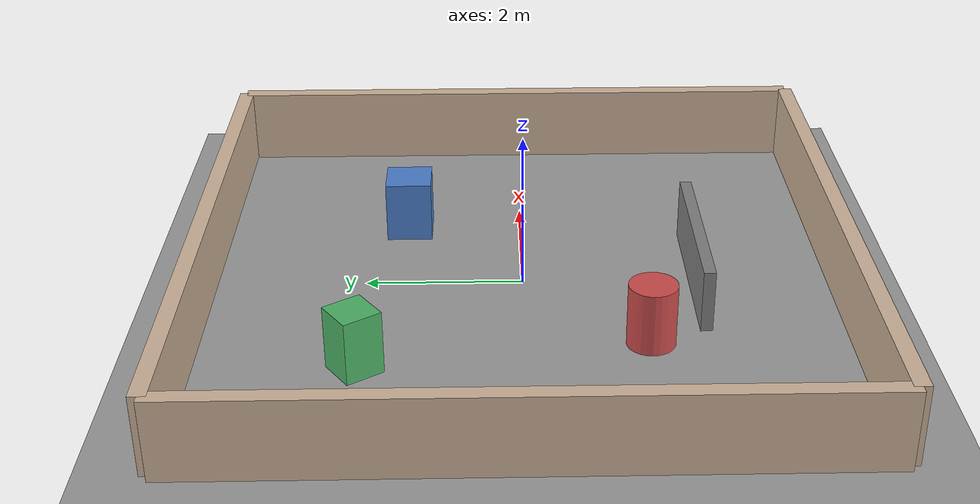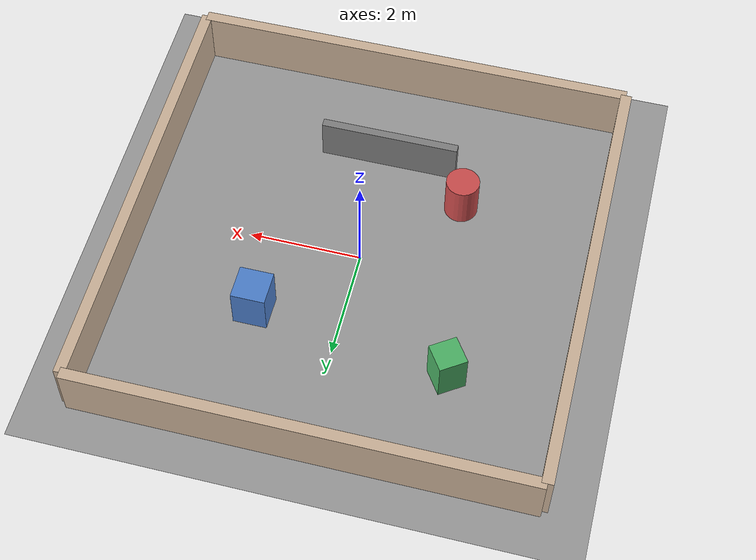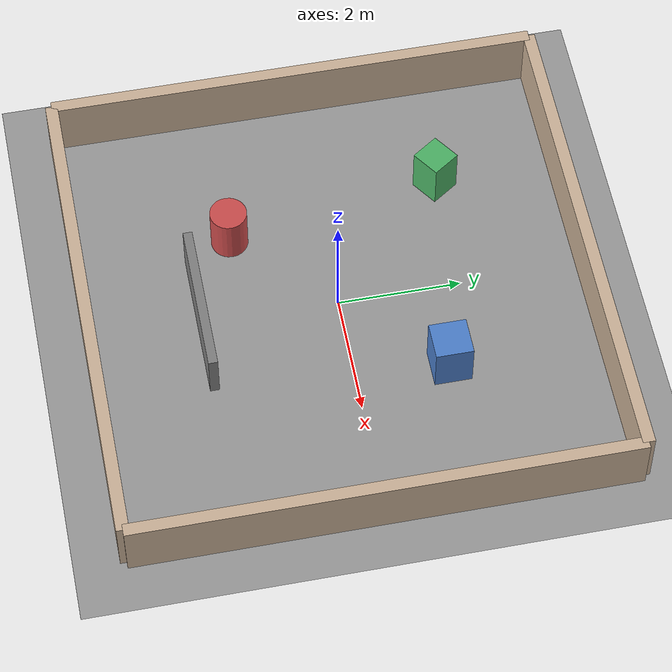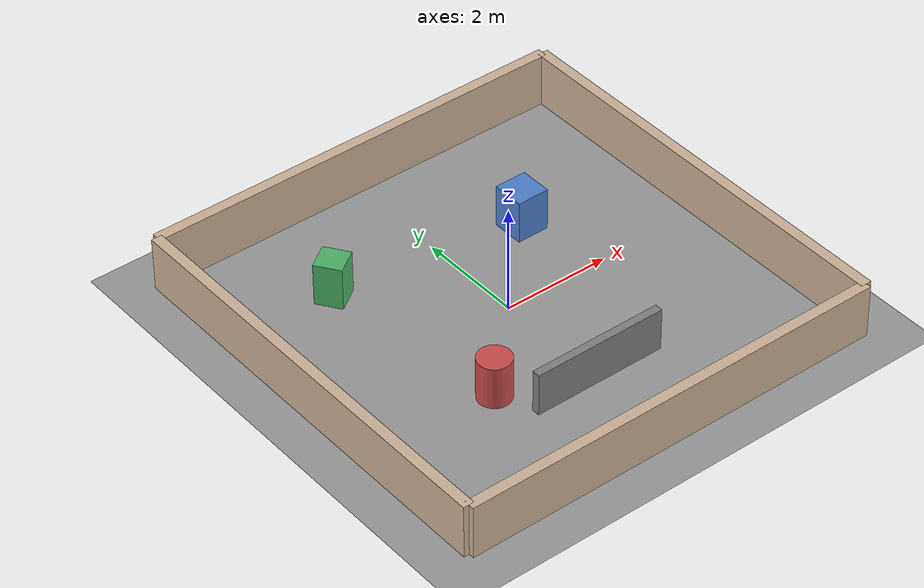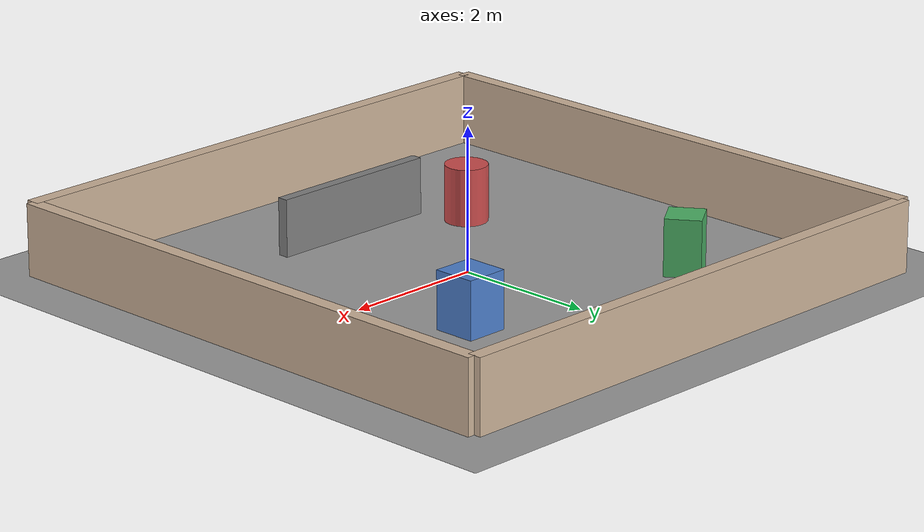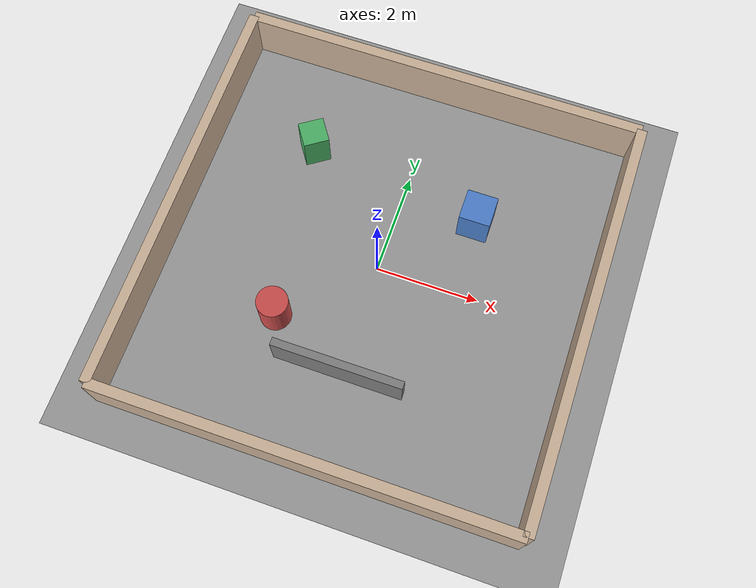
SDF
<?xml version="1.0" ?>
<sdf version="1.9">
  <world name="turtle_world">

    <physics name="default_physics" type="dart">
      <max_step_size>0.001</max_step_size>
      <real_time_factor>1.0</real_time_factor>
      <real_time_update_rate>1000</real_time_update_rate>
    </physics>

    <plugin filename="gz-sim-physics-system" name="gz::sim::systems::Physics"/>
    <plugin filename="gz-sim-user-commands-system" name="gz::sim::systems::UserCommands"/>
    <plugin filename="gz-sim-scene-broadcaster-system" name="gz::sim::systems::SceneBroadcaster"/>
    <plugin filename="gz-sim-sensors-system" name="gz::sim::systems::Sensors">
      <render_engine>ogre2</render_engine>
    </plugin>
    <plugin filename="gz-sim-imu-system" name="gz::sim::systems::Imu"/>
    <plugin filename="gz-sim-contact-system" name="gz::sim::systems::Contact"/>

    <light type="directional" name="sun">
      <cast_shadows>true</cast_shadows>
      <pose>0 0 10 0 0 0</pose>
      <diffuse>0.9 0.9 0.9 1</diffuse>
      <specular>0.2 0.2 0.2 1</specular>
      <attenuation>
        <range>1000</range>
        <constant>0.9</constant>
        <linear>0.01</linear>
        <quadratic>0.001</quadratic>
      </attenuation>
      <direction>-0.5 0.1 -0.9</direction>
    </light>

    <model name="ground_plane">
      <static>true</static>
      <link name="link">
        <collision name="collision">
          <geometry><plane><normal>0 0 1</normal><size>40 40</size></plane></geometry>
          <surface><friction><ode><mu>1.0</mu><mu2>1.0</mu2></ode></friction></surface>
        </collision>
        <visual name="visual">
          <geometry><plane><normal>0 0 1</normal><size>40 40</size></plane></geometry>
          <material>
            <ambient>0.5 0.5 0.5 1</ambient>
            <diffuse>0.6 0.6 0.6 1</diffuse>
          </material>
        </visual>
      </link>
    </model>

    <!-- Outer perimeter walls to bound a mappable arena (approx 8m x 8m) -->
    <model name="wall_north">
      <static>true</static>
      <pose>0 4 0.5 0 0 0</pose>
      <link name="link">
        <collision name="collision"><geometry><box><size>8 0.2 1.0</size></box></geometry></collision>
        <visual name="visual"><geometry><box><size>8 0.2 1.0</size></box></geometry>
          <material><ambient>0.8 0.7 0.6 1</ambient><diffuse>0.8 0.7 0.6 1</diffuse></material>
        </visual>
      </link>
    </model>

    <model name="wall_south">
      <static>true</static>
      <pose>0 -4 0.5 0 0 0</pose>
      <link name="link">
        <collision name="collision"><geometry><box><size>8 0.2 1.0</size></box></geometry></collision>
        <visual name="visual"><geometry><box><size>8 0.2 1.0</size></box></geometry>
          <material><ambient>0.8 0.7 0.6 1</ambient><diffuse>0.8 0.7 0.6 1</diffuse></material>
        </visual>
      </link>
    </model>

    <model name="wall_east">
      <static>true</static>
      <pose>4 0 0.5 0 0 1.5708</pose>
      <link name="link">
        <collision name="collision"><geometry><box><size>8 0.2 1.0</size></box></geometry></collision>
        <visual name="visual"><geometry><box><size>8 0.2 1.0</size></box></geometry>
          <material><ambient>0.8 0.7 0.6 1</ambient><diffuse>0.8 0.7 0.6 1</diffuse></material>
        </visual>
      </link>
    </model>

    <model name="wall_west">
      <static>true</static>
      <pose>-4 0 0.5 0 0 1.5708</pose>
      <link name="link">
        <collision name="collision"><geometry><box><size>8 0.2 1.0</size></box></geometry></collision>
        <visual name="visual"><geometry><box><size>8 0.2 1.0</size></box></geometry>
          <material><ambient>0.8 0.7 0.6 1</ambient><diffuse>0.8 0.7 0.6 1</diffuse></material>
        </visual>
      </link>
    </model>

    <!-- Interior obstacles so SLAM has features to map -->
    <model name="obstacle_box_1">
      <static>true</static>
      <pose>1.5 1.5 0.4 0 0 0</pose>
      <link name="link">
        <collision name="collision"><geometry><box><size>0.6 0.6 0.8</size></box></geometry></collision>
        <visual name="visual"><geometry><box><size>0.6 0.6 0.8</size></box></geometry>
          <material><ambient>0.3 0.5 0.8 1</ambient><diffuse>0.3 0.5 0.8 1</diffuse></material>
        </visual>
      </link>
    </model>

    <model name="obstacle_cylinder_1">
      <static>true</static>
      <pose>-1.5 -1.5 0.4 0 0 0</pose>
      <link name="link">
        <collision name="collision"><geometry><cylinder><radius>0.3</radius><length>0.8</length></cylinder></geometry></collision>
        <visual name="visual"><geometry><cylinder><radius>0.3</radius><length>0.8</length></cylinder></geometry>
          <material><ambient>0.8 0.3 0.3 1</ambient><diffuse>0.8 0.3 0.3 1</diffuse></material>
        </visual>
      </link>
    </model>

    <model name="obstacle_wall_1">
      <static>true</static>
      <pose>0 -2.2 0.4 0 0 0</pose>
      <link name="link">
        <collision name="collision"><geometry><box><size>2.5 0.15 0.8</size></box></geometry></collision>
        <visual name="visual"><geometry><box><size>2.5 0.15 0.8</size></box></geometry>
          <material><ambient>0.5 0.5 0.5 1</ambient><diffuse>0.5 0.5 0.5 1</diffuse></material>
        </visual>
      </link>
    </model>

    <model name="obstacle_box_2">
      <static>true</static>
      <pose>-2.0 2.0 0.4 0 0 0.6</pose>
      <link name="link">
        <collision name="collision"><geometry><box><size>0.5 0.5 0.8</size></box></geometry></collision>
        <visual name="visual"><geometry><box><size>0.5 0.5 0.8</size></box></geometry>
          <material><ambient>0.3 0.7 0.4 1</ambient><diffuse>0.3 0.7 0.4 1</diffuse></material>
        </visual>
      </link>
    </model>

  </world>
</sdf>
